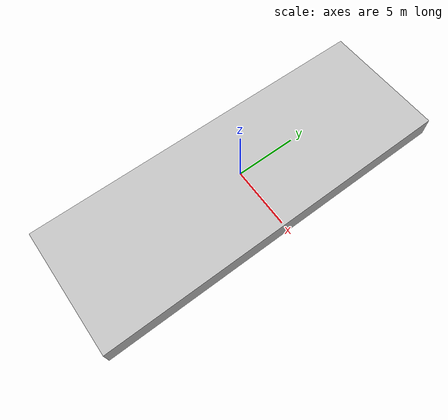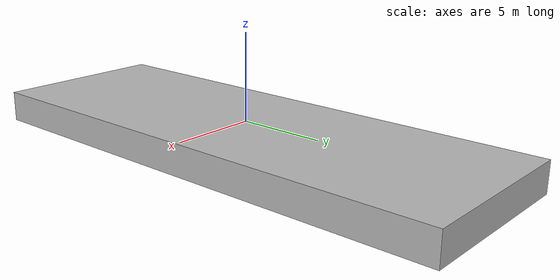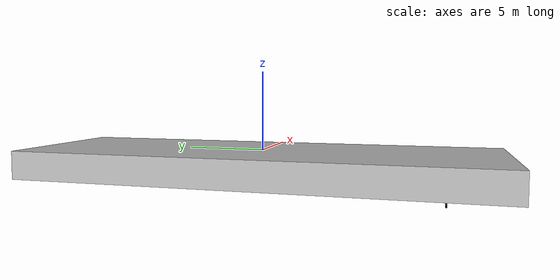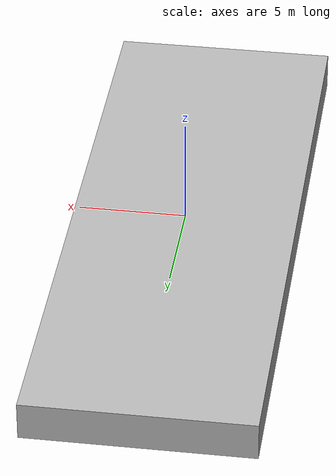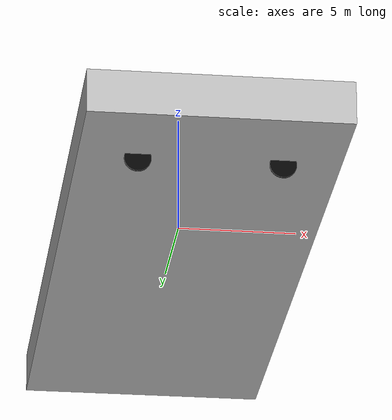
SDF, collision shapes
<?xml version="1.0"?>
<sdf version="1.9">
  <model name="OS_0_MiniUSV1_SIM">
    <self_collide>false</self_collide>
    <!-- Avoid links auto-disabling mid-run (can destabilize coupled buoyancy/hydro). -->
    <allow_auto_disable>false</allow_auto_disable>
    <static>false</static>
    <!-- pose units: x,y,z [m], roll,pitch,yaw [rad]: small debug hull (~3.2 m). -->
    <pose>0.0 0.0 0 0 0 1.5707963267948966</pose>

    <link name="base_link">
      <inertial>
        <!-- CoM slightly below geometric center for roll stability (scaled from large vessel). -->
        <pose>0 0 -2.700000000005435  0 0 0</pose>
        <mass>345915.3600020888</mass>
        <inertia>
          <!-- kg*m^2; izz lowered for snappier yaw; iyy chosen so ixx+izz >= iyy (valid rigid body). -->
          <ixx>3761829.5400378597</ixx>
          <iyy>26527384.17026698</iyy>
          <izz>29121749.37029309</izz>
          <ixy>0</ixy>
          <ixz>0</ixz>
          <iyz>0</iyz>
        </inertia>
      </inertial>

      <collision name="collision_hull">
        <pose>0 0 -0.9000000000018116 0 0 0</pose>
        <geometry>
          <box>
            <size>30.000000000060385 10.500000000021135 1.8000000000036231</size>
          </box>
        </geometry>
      </collision>

      <visual name="visual_hull">
        <pose>0 0 0.4500000000009057 0 0 0</pose>
        <geometry>
          <box>
            <size>30.000000000060385 10.500000000021135 4.500000000009058</size>
          </box>
        </geometry>
      </visual>

      <visual name="visual_keel">
        <pose>0 0 -2.700000000005435 0 0 0</pose>
        <geometry>
          <box>
            <size>25.500000000051326 1.5750000000031703 1.8000000000036231</size>
          </box>
        </geometry>
      </visual>

      <sensor name="imu_sensor" type="imu">
        <pose degrees="true">0 0 0 180 0 0</pose>
        <always_on>1</always_on>
        <update_rate>100.0</update_rate>
      </sensor>
      <sensor name="navsat_sensor" type="navsat">
        <pose>0 0 0 0 0 0</pose>
        <always_on>1</always_on>
        <update_rate>10.0</update_rate>
      </sensor>
  </link>

   <!-- MOTOR -->
  <link name="motor_stbd_link">
      <pose degrees="true">-11.250000000022645 2.8875000000058124 -1.9800000000039857 -90 0 90</pose>
      <inertial>
        <mass>1394.8200000084228</mass>
        <inertia>
          <ixx>203.36475600204673</ixx>
          <iyy>406.72951200409346</iyy>
          <izz>406.72951200409346</izz>
          <ixy>0</ixy>
          <ixz>0</ixz>
          <iyz>0</iyz>
        </inertia>
      </inertial>

      <collision name="prop_collision">
        <geometry> <!-- This tag is required -->
          <cylinder>
            <radius>0.5400000000010869</radius>
            <length>0.09000000000018116</length>
          </cylinder>
        </geometry>
      </collision>

      <visual name="prop_visual">
        <geometry>
          <mesh>
            <uri>models://meshes/blueboat_prop_stbd.dae</uri>
            <!-- Scales the original 0.112m mesh to match your new parameterized diameter -->
            <scale>21.600000000043476 21.600000000043476 21.600000000043476</scale>
          </mesh>
        </geometry>
        <material>
          <diffuse>0.01 0.01 0.01 1</diffuse>
          <ambient>0.01 0.01 0.01 1</ambient>
          <specular>0.7 0.7 0.7 1</specular>
          <pbr>
            <metal>
              <metalness>0.5</metalness>
              <roughness>0.5</roughness>
            </metal>
          </pbr>
        </material>
      </visual>
  </link>

  <joint name="motor_stbd_joint" type="revolute">
    <parent>base_link</parent>
    <child>motor_stbd_link</child>
    <axis>
      <xyz>0 0 -1</xyz>
      <limit>
        <lower>-1e16</lower>
        <upper>1e16</upper>
      </limit>
      <dynamics>
        <damping>0.02</damping>
      </dynamics>
    </axis>
  </joint>

  <link name="motor_port_link">
    <pose degrees="true">-11.250000000022645 -2.8875000000058124 -1.9800000000039857 -90 0 90</pose>
    <inertial>
      <mass>1394.8200000084228</mass>
      <inertia>
        <ixx>203.36475600204673</ixx>
        <iyy>406.72951200409346</iyy>
        <izz>406.72951200409346</izz>
        <ixy>0</ixy>
        <ixz>0</ixz>
        <iyz>0</iyz>
      </inertia>
    </inertial>
    <collision name="prop_collision">
        <geometry> <!-- This tag is required -->
          <cylinder>
            <radius>0.5400000000010869</radius>
            <length>0.09000000000018116</length>
          </cylinder>
        </geometry>
      </collision>

      <visual name="prop_visual">
        <geometry>
          <cylinder>
            <radius>0.5400000000010869</radius>
            <length>0.09000000000018116</length>
          </cylinder>
        </geometry>
        <material>
          <diffuse>0.01 0.01 0.01 1</diffuse>
          <ambient>0.01 0.01 0.01 1</ambient>
          <specular>0.7 0.7 0.7 1</specular>
          <pbr>
            <metal>
              <metalness>0.5</metalness>
              <roughness>0.5</roughness>
            </metal>
          </pbr>
        </material>
      </visual>
  </link>

  <joint name="motor_port_joint" type="revolute">
    <parent>base_link</parent>
    <child>motor_port_link</child>
    <axis>
      <xyz>0 0 -1</xyz>
      <limit>
        <lower>-1e16</lower>
        <upper>1e16</upper>
      </limit>
      <dynamics>
        <damping>0.02</damping>
      </dynamics>
    </axis>
  </joint>

  <plugin filename="gz-sim-hydrodynamics-system" name="gz::sim::systems::Hydrodynamics">
    <link_name>base_link</link_name>
    <enable>base_link</enable>
    <!-- Added mass -->
    <xDotU>-17295.768000104443</xDotU>
    <yDotV>-156498.43803952055</yDotV>
    <zDotW>-172957.6800010444</zDotW>
    <nDotR>-14560874.685146544</nDotR>

    <!-- Linear damping -->
    <xU>-3459.1536000208885</xU>
    <yV>-17295.768000104443</yV>
    <zW>-34591.536000208886</zW>
    <nR>-2912174.937029309</nR>

    <!-- Quadratic damping -->
    <xUabsU>-2905.8750000116984</xUabsU>
   <yVabsV>-27675.000000111413</yVabsV>
   <zWabsW>-193725.0000007799</zWabsW>
   <nRabsR>-2075625.0000167114</nRabsR>
  </plugin>

  <plugin name="gz::sim::systems::JointStatePublisher"
      filename="gz-sim-joint-state-publisher-system">
  </plugin>

  <plugin name="gz::sim::systems::OdometryPublisher"
      filename="gz-sim-odometry-publisher-system">
      <odom_frame>odom</odom_frame>
      <robot_base_frame>base_link</robot_base_frame>
      <dimensions>3</dimensions>
  </plugin>

    <plugin filename="gz-sim-thruster-system" name="gz::sim::systems::Thruster">
      <joint_name>motor_port_joint</joint_name>
      <thrust_coefficient>0.18668467871647582</thrust_coefficient>
      <fluid_density>1025</fluid_density>
      <propeller_diameter>1.0800000000021739</propeller_diameter>
      <velocity_control>0</velocity_control>
      <use_angvel_cmd>0</use_angvel_cmd>
    </plugin>

  <plugin filename="gz-sim-thruster-system" name="gz::sim::systems::Thruster">
    <joint_name>motor_stbd_joint</joint_name>
    <thrust_coefficient>0.18668467871647582</thrust_coefficient>
    <fluid_density>1025</fluid_density>
    <propeller_diameter>1.0800000000021739</propeller_diameter>
    <velocity_control>0</velocity_control>
    <use_angvel_cmd>0</use_angvel_cmd>
  </plugin>

  <plugin filename="ArduPilotPlugin" name="ArduPilotPlugin">
    <robotNamespace>OS_0_MiniUSV1_SIM</robotNamespace>
    <connectionTimeoutMaxCount>5</connectionTimeoutMaxCount>
    <lock_step>1</lock_step>
    <fdm_addr>0.0.0.0</fdm_addr>
    <fdm_port_in>9002</fdm_port_in>
    <!-- Match ardupilot_gazebo iris: ENU world + FLU hull -> NED / aircraft body. -->
    <modelXYZToAirplaneXForwardZDown>0 0 0 3.141592653589793 0 0</modelXYZToAirplaneXForwardZDown>
    <gazeboXYZToNED>0 0 0 3.141592653589793 0 1.5707963267948966</gazeboXYZToNED>
    <imuName>imu_sensor</imuName>

    <!--
      port motor cw

      SERVO1_FUNCTION 73 (ThrottleLeft)
      SERVO1_MAX 2000
      SERVO1_MIN 1000
    -->
    <control channel="0">
      <jointName>motor_port_joint</jointName>
      <type>COMMAND</type>
      <cmd_topic>/model/OS_0_MiniUSV1_SIM/joint/motor_port_joint/cmd_thrust</cmd_topic>
      <multiplier>1952490.041301609</multiplier>
      <offset>-0.5</offset>
      <servo_min>1000</servo_min>
      <servo_max>2000</servo_max>
    </control>

    <!--
      stbd motor ccw

      SERVO3_FUNCTION 74 (ThrottleRight)
      SERVO3_MAX 2000
      SERVO3_MIN 1000
    -->
    <control channel="2">
      <jointName>motor_stbd_joint</jointName>
      <type>COMMAND</type>
      <cmd_topic>/model/OS_0_MiniUSV1_SIM/joint/motor_stbd_joint/cmd_thrust</cmd_topic>
      <multiplier>1952490.041301609</multiplier>
      <offset>-0.5</offset>
      <servo_min>1000</servo_min>
      <servo_max>2000</servo_max>
    </control>
  </plugin>

  </model>
</sdf>
